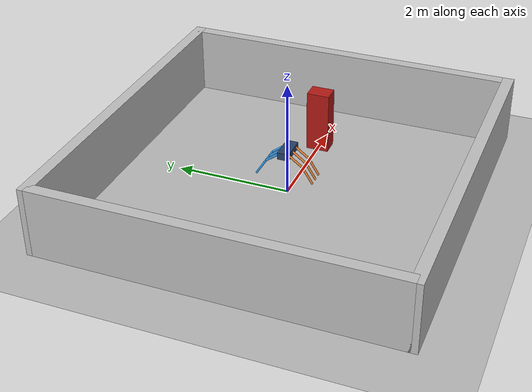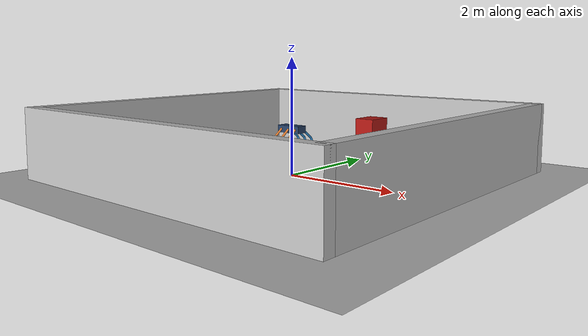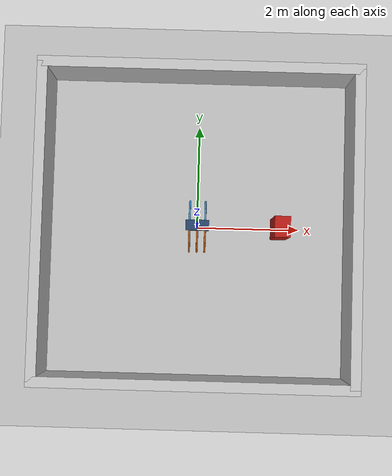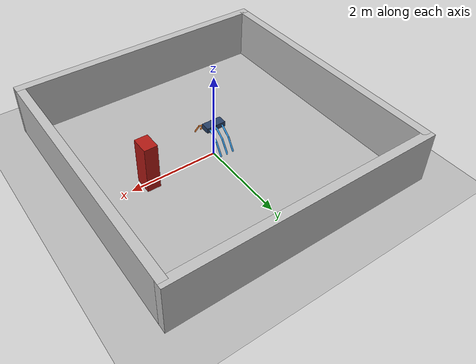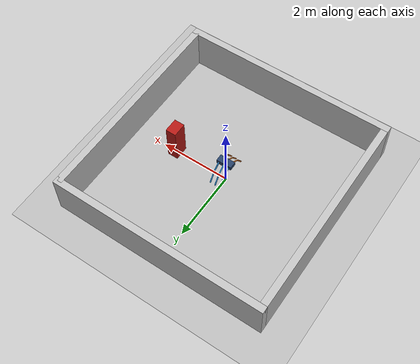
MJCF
<mujoco model="TASS muscle diagnostic rig">
  <compiler angle="degree"/>
  <!-- Fixed body and zero gravity isolate driven joint response from falling. -->
  <option timestep="0.005" gravity="0 0 0"/>
  <visual><global offwidth="320" offheight="240"/><headlight ambient="0.3 0.3 0.3" diffuse="0.4 0.4 0.4"/></visual>
  <asset>
    <texture name="checker" type="2d" builtin="checker" rgb1="0.6 0.6 0.6" rgb2="0.85 0.85 0.85" width="256" height="256"/>
    <material name="floor" texture="checker" texrepeat="8 8"/>
  </asset>
  <default>
    <joint type="hinge" limited="true" range="-20 100" damping="0.025" stiffness="0.06" springref="0" armature="0.002"/>
    <geom type="capsule" size="0.018" mass="0.02" contype="0" conaffinity="0"/>
    <motor ctrllimited="true" ctrlrange="-2 2"/>
  </default>
  <worldbody>
    <light name="stimulus_light" pos="0 0 4" diffuse="0.7 0.7 0.7"/>
    <geom name="floor" type="plane" size="4 4 0.1" material="floor"/>
    <geom name="wall_n" type="box" pos="0 3 0.6" size="3.1 0.1 0.6" rgba="0.75 0.75 0.75 1"/>
    <geom name="wall_s" type="box" pos="0 -3 0.6" size="3.1 0.1 0.6" rgba="0.75 0.75 0.75 1"/>
    <geom name="wall_e" type="box" pos="3 0 0.6" size="0.1 3 0.6" rgba="0.75 0.75 0.75 1"/>
    <geom name="wall_w" type="box" pos="-3 0 0.6" size="0.1 3 0.6" rgba="0.75 0.75 0.75 1"/>
    <body name="target" mocap="true" pos="1.6 0 0.55">
      <geom name="moving_object" type="box" size="0.15 0.2 0.55" rgba="0.7 0.1 0.08 1"/>
    </body>
    <body name="robot" pos="0 0 0.8">
      <geom name="chassis" type="box" size="0.22 0.1 0.06" mass="0.5" rgba="0.15 0.25 0.4 1"/>
      <camera name="eye" pos="0.23 0 0.04" xyaxes="0 -1 0 0 0 1" fovy="70"/>
      <geom name="stand" fromto="0 0 -0.06 0 0 -0.76" size="0.025" rgba="0.45 0.45 0.45 1"/>
      <body name="L_fl_upper" pos="0.15 0.09 0">
        <geom fromto="0 0 0 0 0.23 -0.17" rgba="0.2 0.6 0.9 1"/>
        <body name="L_fl_tibia" pos="0 0.23 -0.17"><joint name="L_fl_joint" axis="1 0 0"/><geom fromto="0 0 0 0 0.17 -0.27" rgba="0.2 0.6 0.9 1"/></body>
      </body>
      <body name="L_ml_upper" pos="0 0.09 0">
        <geom fromto="0 0 0 0 0.23 -0.17" rgba="0.2 0.6 0.9 1"/>
        <body name="L_ml_tibia" pos="0 0.23 -0.17"><joint name="L_ml_joint" axis="1 0 0"/><geom fromto="0 0 0 0 0.17 -0.27" rgba="0.2 0.6 0.9 1"/></body>
      </body>
      <body name="L_hl_upper" pos="-0.15 0.09 0">
        <geom fromto="0 0 0 0 0.23 -0.17" rgba="0.2 0.6 0.9 1"/>
        <body name="L_hl_tibia" pos="0 0.23 -0.17"><joint name="L_hl_joint" axis="1 0 0"/><geom fromto="0 0 0 0 0.17 -0.27" rgba="0.2 0.6 0.9 1"/></body>
      </body>
      <body name="R_fl_upper" pos="0.15 -0.09 0">
        <geom fromto="0 0 0 0 -0.23 -0.17" rgba="0.9 0.5 0.2 1"/>
        <body name="R_fl_tibia" pos="0 -0.23 -0.17"><joint name="R_fl_joint" axis="-1 0 0"/><geom fromto="0 0 0 0 -0.17 -0.27" rgba="0.9 0.5 0.2 1"/></body>
      </body>
      <body name="R_ml_upper" pos="0 -0.09 0">
        <geom fromto="0 0 0 0 -0.23 -0.17" rgba="0.9 0.5 0.2 1"/>
        <body name="R_ml_tibia" pos="0 -0.23 -0.17"><joint name="R_ml_joint" axis="-1 0 0"/><geom fromto="0 0 0 0 -0.17 -0.27" rgba="0.9 0.5 0.2 1"/></body>
      </body>
      <body name="R_hl_upper" pos="-0.15 -0.09 0">
        <geom fromto="0 0 0 0 -0.23 -0.17" rgba="0.9 0.5 0.2 1"/>
        <body name="R_hl_tibia" pos="0 -0.23 -0.17"><joint name="R_hl_joint" axis="-1 0 0"/><geom fromto="0 0 0 0 -0.17 -0.27" rgba="0.9 0.5 0.2 1"/></body>
      </body>
    </body>
  </worldbody>
  <actuator>
    <motor name="L_fl_drive" joint="L_fl_joint"/>
    <motor name="L_ml_drive" joint="L_ml_joint"/>
    <motor name="L_hl_drive" joint="L_hl_joint"/>
    <motor name="R_fl_drive" joint="R_fl_joint"/>
    <motor name="R_ml_drive" joint="R_ml_joint"/>
    <motor name="R_hl_drive" joint="R_hl_joint"/>
  </actuator>
</mujoco>
